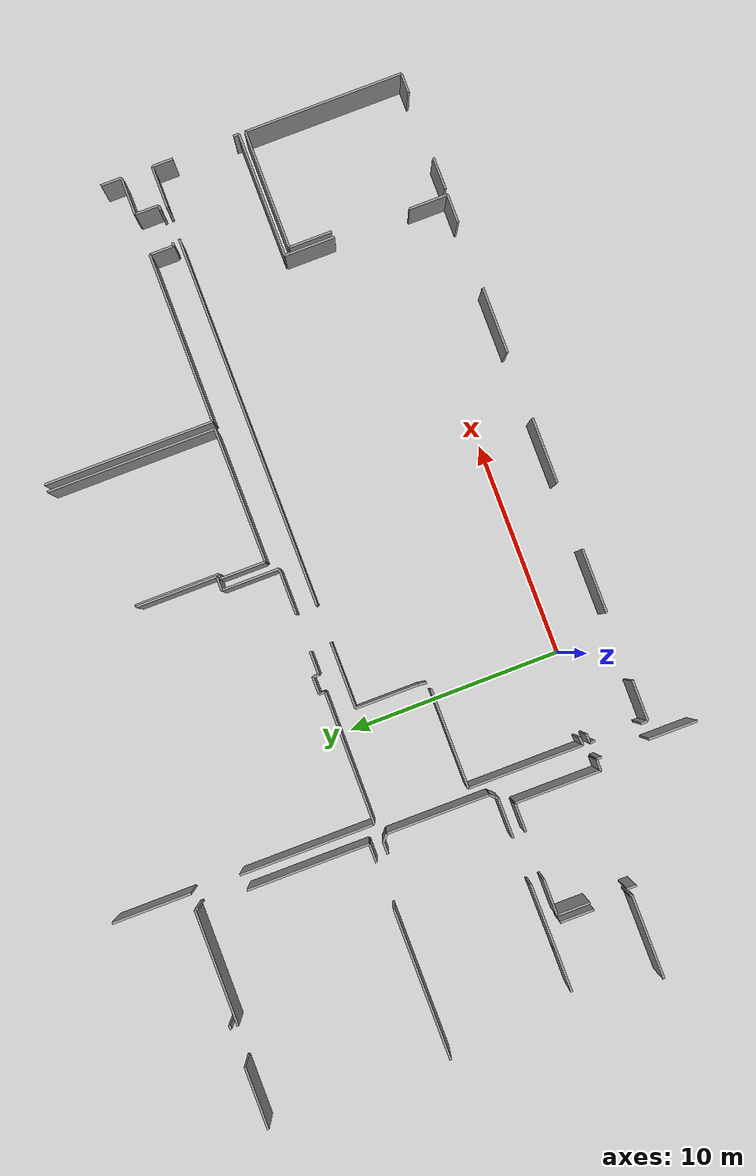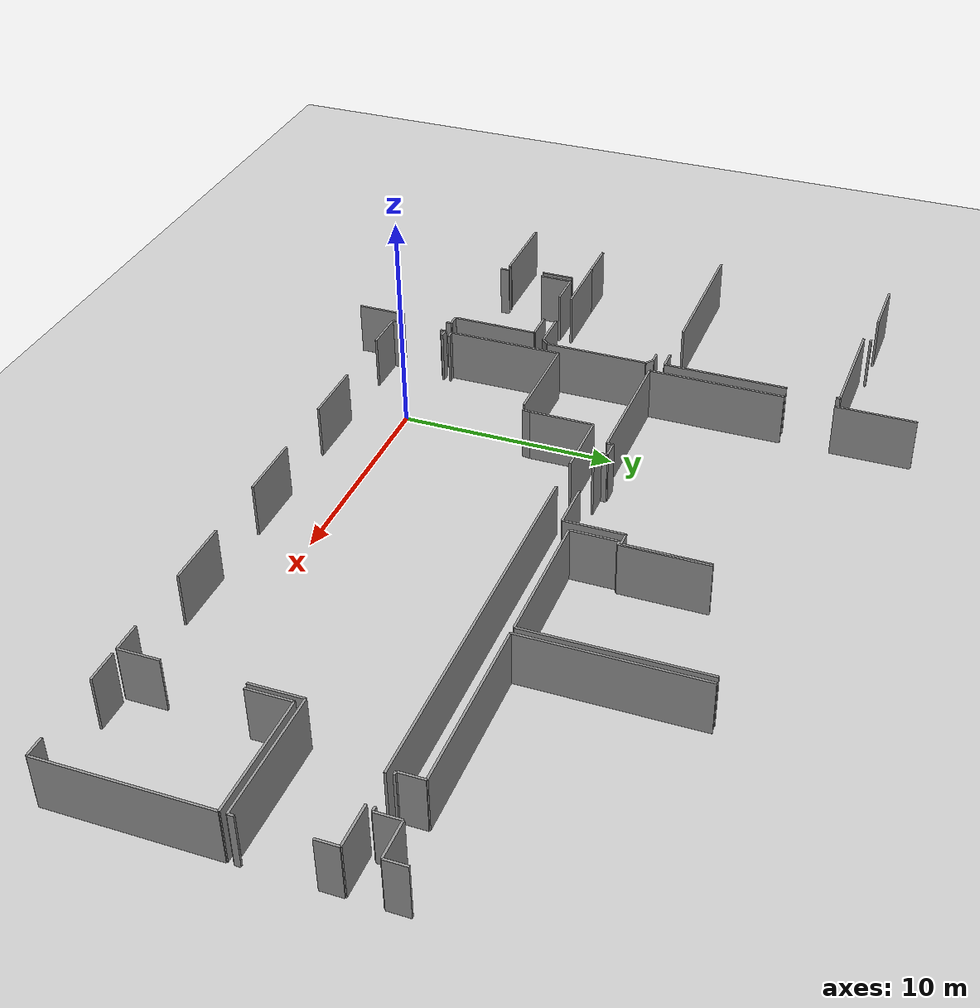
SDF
<sdf version="1.6">
 <world name="default">
  <model name="ground_plane">
   <static>1</static>
   <link name="link">
    <collision name="collision">
     <geometry><plane><normal>0 0 1</normal><size>100 100</size></plane></geometry>
     <surface><friction><ode><mu>100</mu><mu2>50</mu2></ode></friction></surface>
    </collision>
    <visual name="visual">
     <cast_shadows>0</cast_shadows>
     <geometry><plane><normal>0 0 1</normal><size>100 100</size></plane></geometry>
     <material>
      <script><uri>file://media/materials/scripts/gazebo.material</uri><name>Gazebo/Grey</name></script>
     </material>
    </visual>
   </link>
  </model>
  <model name="0510045922_A-40">
   <static>1</static>
   <link name="Wall_1239">
    <collision name="Wall_1239_Collision">
     <geometry><box><size>0.206138399949 0.1 2.5</size></box></geometry>
     <pose>0.103069199975 0 1.25 0 0 0</pose>
    </collision>
    <visual name="Wall_1239_Visual">
     <pose>0.103069199975 0 1.25 0 0 0</pose>
     <geometry><box><size>0.206138399949 0.1 2.5</size></box></geometry>
     <material>
      <script><uri>file://media/materials/scripts/gazebo.material</uri><name>Gazebo/Grey</name></script>
      <ambient>1 1 1 1</ambient>
     </material>
    </visual>
    <pose>124.140611298 -81.8037491263 0 0 0 3.14159265359</pose>
   </link>
   <link name="Wall_1240">
    <collision name="Wall_1240_Collision">
     <geometry><box><size>2.88899177243 0.1 2.5</size></box></geometry>
     <pose>1.44449588622 0 1.25 0 0 0</pose>
    </collision>
    <visual name="Wall_1240_Visual">
     <pose>1.44449588622 0 1.25 0 0 0</pose>
     <geometry><box><size>2.88899177243 0.1 2.5</size></box></geometry>
     <material>
      <script><uri>file://media/materials/scripts/gazebo.material</uri><name>Gazebo/Grey</name></script>
      <ambient>1 1 1 1</ambient>
     </material>
    </visual>
    <pose>122.211654064 -81.8037491263 0 0 0 -3.13992100285</pose>
   </link>
   <link name="Wall_1252">
    <collision name="Wall_1252_Collision">
     <geometry><box><size>5.37205312321 0.1 2.5</size></box></geometry>
     <pose>2.68602656161 0 1.25 0 0 0</pose>
    </collision>
    <visual name="Wall_1252_Visual">
     <pose>2.68602656161 0 1.25 0 0 0</pose>
     <geometry><box><size>5.37205312321 0.1 2.5</size></box></geometry>
     <material>
      <script><uri>file://media/materials/scripts/gazebo.material</uri><name>Gazebo/Grey</name></script>
      <ambient>1 1 1 1</ambient>
     </material>
    </visual>
    <pose>123.974124674 -82.1435851814 0 0 0 0.0</pose>
   </link>
   <link name="Wall_1253">
    <collision name="Wall_1253_Collision">
     <geometry><box><size>0.174620321535 0.1 2.5</size></box></geometry>
     <pose>0.0873101607676 0 1.25 0 0 0</pose>
    </collision>
    <visual name="Wall_1253_Visual">
     <pose>0.0873101607676 0 1.25 0 0 0</pose>
     <geometry><box><size>0.174620321535 0.1 2.5</size></box></geometry>
     <material>
      <script><uri>file://media/materials/scripts/gazebo.material</uri><name>Gazebo/Grey</name></script>
      <ambient>1 1 1 1</ambient>
     </material>
    </visual>
    <pose>129.346177798 -82.1435851814 0 0 0 -1.57079632679</pose>
   </link>
   <link name="Wall_1254">
    <collision name="Wall_1254_Collision">
     <geometry><box><size>5.71671856135 0.1 2.5</size></box></geometry>
     <pose>2.85835928068 0 1.25 0 0 0</pose>
    </collision>
    <visual name="Wall_1254_Visual">
     <pose>2.85835928068 0 1.25 0 0 0</pose>
     <geometry><box><size>5.71671856135 0.1 2.5</size></box></geometry>
     <material>
      <script><uri>file://media/materials/scripts/gazebo.material</uri><name>Gazebo/Grey</name></script>
      <ambient>1 1 1 1</ambient>
     </material>
    </visual>
    <pose>129.346177798 -84.569206329 0 0 0 -1.57079632679</pose>
   </link>
   <link name="Wall_1255">
    <collision name="Wall_1255_Collision">
     <geometry><box><size>0.868526402745 0.1 2.5</size></box></geometry>
     <pose>0.434263201373 0 1.25 0 0 0</pose>
    </collision>
    <visual name="Wall_1255_Visual">
     <pose>0.434263201373 0 1.25 0 0 0</pose>
     <geometry><box><size>0.868526402745 0.1 2.5</size></box></geometry>
     <material>
      <script><uri>file://media/materials/scripts/gazebo.material</uri><name>Gazebo/Grey</name></script>
      <ambient>1 1 1 1</ambient>
     </material>
    </visual>
    <pose>129.346177798 -90.2859248904 0 0 0 3.14159265359</pose>
   </link>
   <link name="Wall_1256">
    <collision name="Wall_1256_Collision">
     <geometry><box><size>6.96397695934 0.1 2.5</size></box></geometry>
     <pose>3.48198847967 0 1.25 0 0 0</pose>
    </collision>
    <visual name="Wall_1256_Visual">
     <pose>3.48198847967 0 1.25 0 0 0</pose>
     <geometry><box><size>6.96397695934 0.1 2.5</size></box></geometry>
     <material>
      <script><uri>file://media/materials/scripts/gazebo.material</uri><name>Gazebo/Grey</name></script>
      <ambient>1 1 1 1</ambient>
     </material>
    </visual>
    <pose>126.301378916 -90.2859248904 0 0 0 -3.14020569193</pose>
   </link>
   <link name="Wall_1261">
    <collision name="Wall_1261_Collision">
     <geometry><box><size>0.967147486815 0.1 2.5</size></box></geometry>
     <pose>0.483573743407 0 1.25 0 0 0</pose>
    </collision>
    <visual name="Wall_1261_Visual">
     <pose>0.483573743407 0 1.25 0 0 0</pose>
     <geometry><box><size>0.967147486815 0.1 2.5</size></box></geometry>
     <material>
      <script><uri>file://media/materials/scripts/gazebo.material</uri><name>Gazebo/Grey</name></script>
      <ambient>1 1 1 1</ambient>
     </material>
    </visual>
    <pose>160.664726441 -89.394522463 0 0 0 -1.57079632679</pose>
   </link>
   <link name="Wall_1262">
    <collision name="Wall_1262_Collision">
     <geometry><box><size>1.73095253225 0.1 2.5</size></box></geometry>
     <pose>0.865476266124 0 1.25 0 0 0</pose>
    </collision>
    <visual name="Wall_1262_Visual">
     <pose>0.865476266124 0 1.25 0 0 0</pose>
     <geometry><box><size>1.73095253225 0.1 2.5</size></box></geometry>
     <material>
      <script><uri>file://media/materials/scripts/gazebo.material</uri><name>Gazebo/Grey</name></script>
      <ambient>1 1 1 1</ambient>
     </material>
    </visual>
    <pose>160.664726441 -90.3616699498 0 0 0 3.14159265359</pose>
   </link>
   <link name="Wall_1263">
    <collision name="Wall_1263_Collision">
     <geometry><box><size>1.1130456885 0.1 2.5</size></box></geometry>
     <pose>0.556522844252 0 1.25 0 0 0</pose>
    </collision>
    <visual name="Wall_1263_Visual">
     <pose>0.556522844252 0 1.25 0 0 0</pose>
     <geometry><box><size>1.1130456885 0.1 2.5</size></box></geometry>
     <material>
      <script><uri>file://media/materials/scripts/gazebo.material</uri><name>Gazebo/Grey</name></script>
      <ambient>1 1 1 1</ambient>
     </material>
    </visual>
    <pose>158.933773909 -90.3616699498 0 0 0 -1.57079632679</pose>
   </link>
   <link name="Wall_1264">
    <collision name="Wall_1264_Collision">
     <geometry><box><size>0.236131410053 0.1 2.5</size></box></geometry>
     <pose>0.118065705026 0 1.25 0 0 0</pose>
    </collision>
    <visual name="Wall_1264_Visual">
     <pose>0.118065705026 0 1.25 0 0 0</pose>
     <geometry><box><size>0.236131410053 0.1 2.5</size></box></geometry>
     <material>
      <script><uri>file://media/materials/scripts/gazebo.material</uri><name>Gazebo/Grey</name></script>
      <ambient>1 1 1 1</ambient>
     </material>
    </visual>
    <pose>158.933773909 -91.4747156383 0 0 0 3.14159265359</pose>
   </link>
   <link name="Wall_1265">
    <collision name="Wall_1265_Collision">
     <geometry><box><size>0.171061828811 0.1 2.5</size></box></geometry>
     <pose>0.0855309144055 0 1.25 0 0 0</pose>
    </collision>
    <visual name="Wall_1265_Visual">
     <pose>0.0855309144055 0 1.25 0 0 0</pose>
     <geometry><box><size>0.171061828811 0.1 2.5</size></box></geometry>
     <material>
      <script><uri>file://media/materials/scripts/gazebo.material</uri><name>Gazebo/Grey</name></script>
      <ambient>1 1 1 1</ambient>
     </material>
    </visual>
    <pose>157.186299803 -91.4747156383 0 0 0 3.14159265359</pose>
   </link>
   <link name="Wall_1266">
    <collision name="Wall_1266_Collision">
     <geometry><box><size>1.12372116668 0.1 2.5</size></box></geometry>
     <pose>0.561860583339 0 1.25 0 0 0</pose>
    </collision>
    <visual name="Wall_1266_Visual">
     <pose>0.561860583339 0 1.25 0 0 0</pose>
     <geometry><box><size>1.12372116668 0.1 2.5</size></box></geometry>
     <material>
      <script><uri>file://media/materials/scripts/gazebo.material</uri><name>Gazebo/Grey</name></script>
      <ambient>1 1 1 1</ambient>
     </material>
    </visual>
    <pose>157.015237974 -91.4747156383 0 0 0 1.57079632679</pose>
   </link>
   <link name="Wall_1267">
    <collision name="Wall_1267_Collision">
     <geometry><box><size>7.90061638178 0.1 2.5</size></box></geometry>
     <pose>3.95030819089 0 1.25 0 0 0</pose>
    </collision>
    <visual name="Wall_1267_Visual">
     <pose>3.95030819089 0 1.25 0 0 0</pose>
     <geometry><box><size>7.90061638178 0.1 2.5</size></box></geometry>
     <material>
      <script><uri>file://media/materials/scripts/gazebo.material</uri><name>Gazebo/Grey</name></script>
      <ambient>1 1 1 1</ambient>
     </material>
    </visual>
    <pose>157.015237974 -90.3509944716 0 0 0 3.14159265359</pose>
   </link>
   <link name="Wall_1268">
    <collision name="Wall_1268_Collision">
     <geometry><box><size>7.90061638178 0.1 2.5</size></box></geometry>
     <pose>3.95030819089 0 1.25 0 0 0</pose>
    </collision>
    <visual name="Wall_1268_Visual">
     <pose>3.95030819089 0 1.25 0 0 0</pose>
     <geometry><box><size>7.90061638178 0.1 2.5</size></box></geometry>
     <material>
      <script><uri>file://media/materials/scripts/gazebo.material</uri><name>Gazebo/Grey</name></script>
      <ambient>1 1 1 1</ambient>
     </material>
    </visual>
    <pose>149.114621592 -90.3509944716 0 0 0 1.57079632679</pose>
   </link>
   <link name="Wall_1270">
    <collision name="Wall_1270_Collision">
     <geometry><box><size>2.11730317087 0.1 2.5</size></box></geometry>
     <pose>1.05865158544 0 1.25 0 0 0</pose>
    </collision>
    <visual name="Wall_1270_Visual">
     <pose>1.05865158544 0 1.25 0 0 0</pose>
     <geometry><box><size>2.11730317087 0.1 2.5</size></box></geometry>
     <material>
      <script><uri>file://media/materials/scripts/gazebo.material</uri><name>Gazebo/Grey</name></script>
      <ambient>1 1 1 1</ambient>
     </material>
    </visual>
    <pose>142.511584165 -90.3542987863 0 0 0 1.57079632679</pose>
   </link>
   <link name="Wall_1271">
    <collision name="Wall_1271_Collision">
     <geometry><box><size>0.213763741501 0.1 2.5</size></box></geometry>
     <pose>0.10688187075 0 1.25 0 0 0</pose>
    </collision>
    <visual name="Wall_1271_Visual">
     <pose>0.10688187075 0 1.25 0 0 0</pose>
     <geometry><box><size>0.213763741501 0.1 2.5</size></box></geometry>
     <material>
      <script><uri>file://media/materials/scripts/gazebo.material</uri><name>Gazebo/Grey</name></script>
      <ambient>1 1 1 1</ambient>
     </material>
    </visual>
    <pose>142.511584165 -88.2369956154 0 0 0 0.0</pose>
   </link>
   <link name="Wall_1272">
    <collision name="Wall_1272_Collision">
     <geometry><box><size>3.90925843553 0.1 2.5</size></box></geometry>
     <pose>1.95462921777 0 1.25 0 0 0</pose>
    </collision>
    <visual name="Wall_1272_Visual">
     <pose>1.95462921777 0 1.25 0 0 0</pose>
     <geometry><box><size>3.90925843553 0.1 2.5</size></box></geometry>
     <material>
      <script><uri>file://media/materials/scripts/gazebo.material</uri><name>Gazebo/Grey</name></script>
      <ambient>1 1 1 1</ambient>
     </material>
    </visual>
    <pose>142.725347906 -88.2369956154 0 0 0 1.57079632679</pose>
   </link>
   <link name="Wall_1276">
    <collision name="Wall_1276_Collision">
     <geometry><box><size>7.867319057 0.1 2.5</size></box></geometry>
     <pose>3.9336595285 0 1.25 0 0 0</pose>
    </collision>
    <visual name="Wall_1276_Visual">
     <pose>3.9336595285 0 1.25 0 0 0</pose>
     <geometry><box><size>7.867319057 0.1 2.5</size></box></geometry>
     <material>
      <script><uri>file://media/materials/scripts/gazebo.material</uri><name>Gazebo/Grey</name></script>
      <ambient>1 1 1 1</ambient>
     </material>
    </visual>
    <pose>148.775039715 -82.4641037046 0 0 0 -1.57079632679</pose>
   </link>
   <link name="Wall_1277">
    <collision name="Wall_1277_Collision">
     <geometry><box><size>6.26349732554 0.1 2.5</size></box></geometry>
     <pose>3.13174866277 0 1.25 0 0 0</pose>
    </collision>
    <visual name="Wall_1277_Visual">
     <pose>3.13174866277 0 1.25 0 0 0</pose>
     <geometry><box><size>6.26349732554 0.1 2.5</size></box></geometry>
     <material>
      <script><uri>file://media/materials/scripts/gazebo.material</uri><name>Gazebo/Grey</name></script>
      <ambient>1 1 1 1</ambient>
     </material>
    </visual>
    <pose>148.775039715 -90.3314227616 0 0 0 -3.13794036888</pose>
   </link>
   <link name="Wall_1278">
    <collision name="Wall_1278_Collision">
     <geometry><box><size>6.27489356294 0.1 2.5</size></box></geometry>
     <pose>3.13744678147 0 1.25 0 0 0</pose>
    </collision>
    <visual name="Wall_1278_Visual">
     <pose>3.13744678147 0 1.25 0 0 0</pose>
     <geometry><box><size>6.27489356294 0.1 2.5</size></box></geometry>
     <material>
      <script><uri>file://media/materials/scripts/gazebo.material</uri><name>Gazebo/Grey</name></script>
      <ambient>1 1 1 1</ambient>
     </material>
    </visual>
    <pose>130.076177162 -90.7866556523 0 0 0 1.57079632679</pose>
   </link>
   <link name="Wall_1279">
    <collision name="Wall_1279_Collision">
     <geometry><box><size>3.67693969626 0.1 2.5</size></box></geometry>
     <pose>1.83846984813 0 1.25 0 0 0</pose>
    </collision>
    <visual name="Wall_1279_Visual">
     <pose>1.83846984813 0 1.25 0 0 0</pose>
     <geometry><box><size>3.67693969626 0.1 2.5</size></box></geometry>
     <material>
      <script><uri>file://media/materials/scripts/gazebo.material</uri><name>Gazebo/Grey</name></script>
      <ambient>1 1 1 1</ambient>
     </material>
    </visual>
    <pose>130.076177162 -82.2419520874 0 0 0 1.57079632679</pose>
   </link>
   <link name="Wall_1283">
    <collision name="Wall_1283_Collision">
     <geometry><box><size>3.76971468514 0.1 2.5</size></box></geometry>
     <pose>1.88485734257 0 1.25 0 0 0</pose>
    </collision>
    <visual name="Wall_1283_Visual">
     <pose>1.88485734257 0 1.25 0 0 0</pose>
     <geometry><box><size>3.76971468514 0.1 2.5</size></box></geometry>
     <material>
      <script><uri>file://media/materials/scripts/gazebo.material</uri><name>Gazebo/Grey</name></script>
      <ambient>1 1 1 1</ambient>
     </material>
    </visual>
    <pose>142.655448942 -84.3556967656 0 0 0 -1.57079632679</pose>
   </link>
   <link name="Wall_1284">
    <collision name="Wall_1284_Collision">
     <geometry><box><size>0.642053758658 0.1 2.5</size></box></geometry>
     <pose>0.321026879329 0 1.25 0 0 0</pose>
    </collision>
    <visual name="Wall_1284_Visual">
     <pose>0.321026879329 0 1.25 0 0 0</pose>
     <geometry><box><size>0.642053758658 0.1 2.5</size></box></geometry>
     <material>
      <script><uri>file://media/materials/scripts/gazebo.material</uri><name>Gazebo/Grey</name></script>
      <ambient>1 1 1 1</ambient>
     </material>
    </visual>
    <pose>142.655448942 -88.1254114507 0 0 0 3.14159265359</pose>
   </link>
   <link name="Wall_1285">
    <collision name="Wall_1285_Collision">
     <geometry><box><size>2.68971214336 0.1 2.5</size></box></geometry>
     <pose>1.34485607168 0 1.25 0 0 0</pose>
    </collision>
    <visual name="Wall_1285_Visual">
     <pose>1.34485607168 0 1.25 0 0 0</pose>
     <geometry><box><size>2.68971214336 0.1 2.5</size></box></geometry>
     <material>
      <script><uri>file://media/materials/scripts/gazebo.material</uri><name>Gazebo/Grey</name></script>
      <ambient>1 1 1 1</ambient>
     </material>
    </visual>
    <pose>142.013395183 -88.1254114507 0 0 0 -1.57079632679</pose>
   </link>
   <link name="Wall_1286">
    <collision name="Wall_1286_Collision">
     <geometry><box><size>2.11831988308 0.1 2.5</size></box></geometry>
     <pose>1.05915994154 0 1.25 0 0 0</pose>
    </collision>
    <visual name="Wall_1286_Visual">
     <pose>1.05915994154 0 1.25 0 0 0</pose>
     <geometry><box><size>2.11831988308 0.1 2.5</size></box></geometry>
     <material>
      <script><uri>file://media/materials/scripts/gazebo.material</uri><name>Gazebo/Grey</name></script>
      <ambient>1 1 1 1</ambient>
     </material>
    </visual>
    <pose>142.013395183 -90.8151235941 0 0 0 3.14159265359</pose>
   </link>
   <link name="Wall_1287">
    <collision name="Wall_1287_Collision">
     <geometry><box><size>1.08940712969 0.1 2.5</size></box></geometry>
     <pose>0.544703564847 0 1.25 0 0 0</pose>
    </collision>
    <visual name="Wall_1287_Visual">
     <pose>0.544703564847 0 1.25 0 0 0</pose>
     <geometry><box><size>1.08940712969 0.1 2.5</size></box></geometry>
     <material>
      <script><uri>file://media/materials/scripts/gazebo.material</uri><name>Gazebo/Grey</name></script>
      <ambient>1 1 1 1</ambient>
     </material>
    </visual>
    <pose>138.128792019 -90.8151235941 0 0 0 3.14159265359</pose>
   </link>
   <link name="Wall_1288">
    <collision name="Wall_1288_Collision">
     <geometry><box><size>0.285696130139 0.1 2.5</size></box></geometry>
     <pose>0.14284806507 0 1.25 0 0 0</pose>
    </collision>
    <visual name="Wall_1288_Visual">
     <pose>0.14284806507 0 1.25 0 0 0</pose>
     <geometry><box><size>0.285696130139 0.1 2.5</size></box></geometry>
     <material>
      <script><uri>file://media/materials/scripts/gazebo.material</uri><name>Gazebo/Grey</name></script>
      <ambient>1 1 1 1</ambient>
     </material>
    </visual>
    <pose>137.039384889 -90.8151235941 0 0 0 1.57079632679</pose>
   </link>
   <link name="Wall_1289">
    <collision name="Wall_1289_Collision">
     <geometry><box><size>0.802694287348 0.1 2.5</size></box></geometry>
     <pose>0.401347143674 0 1.25 0 0 0</pose>
    </collision>
    <visual name="Wall_1289_Visual">
     <pose>0.401347143674 0 1.25 0 0 0</pose>
     <geometry><box><size>0.802694287348 0.1 2.5</size></box></geometry>
     <material>
      <script><uri>file://media/materials/scripts/gazebo.material</uri><name>Gazebo/Grey</name></script>
      <ambient>1 1 1 1</ambient>
     </material>
    </visual>
    <pose>137.039384889 -90.5294274639 0 0 0 3.14159265359</pose>
   </link>
   <link name="Wall_1290">
    <collision name="Wall_1290_Collision">
     <geometry><box><size>0.277054076381 0.1 2.5</size></box></geometry>
     <pose>0.13852703819 0 1.25 0 0 0</pose>
    </collision>
    <visual name="Wall_1290_Visual">
     <pose>0.13852703819 0 1.25 0 0 0</pose>
     <geometry><box><size>0.277054076381 0.1 2.5</size></box></geometry>
     <material>
      <script><uri>file://media/materials/scripts/gazebo.material</uri><name>Gazebo/Grey</name></script>
      <ambient>1 1 1 1</ambient>
     </material>
    </visual>
    <pose>136.236690602 -90.5294274639 0 0 0 -1.57079632679</pose>
   </link>
   <link name="Wall_1291">
    <collision name="Wall_1291_Collision">
     <geometry><box><size>6.16054534162 0.1 2.5</size></box></geometry>
     <pose>3.08027267081 0 1.25 0 0 0</pose>
    </collision>
    <visual name="Wall_1291_Visual">
     <pose>3.08027267081 0 1.25 0 0 0</pose>
     <geometry><box><size>6.16054534162 0.1 2.5</size></box></geometry>
     <material>
      <script><uri>file://media/materials/scripts/gazebo.material</uri><name>Gazebo/Grey</name></script>
      <ambient>1 1 1 1</ambient>
     </material>
    </visual>
    <pose>136.236690602 -90.8064815403 0 0 0 3.13837444462</pose>
   </link>
   <link name="Wall_1292">
    <collision name="Wall_1292_Collision">
     <geometry><box><size>5.37357819152 0.1 2.5</size></box></geometry>
     <pose>2.68678909576 0 1.25 0 0 0</pose>
    </collision>
    <visual name="Wall_1292_Visual">
     <pose>2.68678909576 0 1.25 0 0 0</pose>
     <geometry><box><size>5.37357819152 0.1 2.5</size></box></geometry>
     <material>
      <script><uri>file://media/materials/scripts/gazebo.material</uri><name>Gazebo/Grey</name></script>
      <ambient>1 1 1 1</ambient>
     </material>
    </visual>
    <pose>130.090411133 -100.56386859 0 0 0 1.57079632679</pose>
   </link>
   <link name="Wall_1293">
    <collision name="Wall_1293_Collision">
     <geometry><box><size>4.60951896804 0.1 2.5</size></box></geometry>
     <pose>2.30475948402 0 1.25 0 0 0</pose>
    </collision>
    <visual name="Wall_1293_Visual">
     <pose>2.30475948402 0 1.25 0 0 0</pose>
     <geometry><box><size>4.60951896804 0.1 2.5</size></box></geometry>
     <material>
      <script><uri>file://media/materials/scripts/gazebo.material</uri><name>Gazebo/Grey</name></script>
      <ambient>1 1 1 1</ambient>
     </material>
    </visual>
    <pose>130.090411133 -95.1902903984 0 0 0 0.0</pose>
   </link>
   <link name="Wall_1294">
    <collision name="Wall_1294_Collision">
     <geometry><box><size>0.37125739065 0.1 2.5</size></box></geometry>
     <pose>0.185628695325 0 1.25 0 0 0</pose>
    </collision>
    <visual name="Wall_1294_Visual">
     <pose>0.185628695325 0 1.25 0 0 0</pose>
     <geometry><box><size>0.37125739065 0.1 2.5</size></box></geometry>
     <material>
      <script><uri>file://media/materials/scripts/gazebo.material</uri><name>Gazebo/Grey</name></script>
      <ambient>1 1 1 1</ambient>
     </material>
    </visual>
    <pose>130.460240198 -100.531333799 0 0 0 -3.05384604148</pose>
   </link>
   <link name="Wall_1296">
    <collision name="Wall_1296_Collision">
     <geometry><box><size>1.99961873292 0.1 2.5</size></box></geometry>
     <pose>0.999809366461 0 1.25 0 0 0</pose>
    </collision>
    <visual name="Wall_1296_Visual">
     <pose>0.999809366461 0 1.25 0 0 0</pose>
     <geometry><box><size>1.99961873292 0.1 2.5</size></box></geometry>
     <material>
      <script><uri>file://media/materials/scripts/gazebo.material</uri><name>Gazebo/Grey</name></script>
      <ambient>1 1 1 1</ambient>
     </material>
    </visual>
    <pose>155.149825253 -98.2170426384 0 0 0 1.57079632679</pose>
   </link>
   <link name="Wall_1297">
    <collision name="Wall_1297_Collision">
     <geometry><box><size>5.5105801614 0.1 2.5</size></box></geometry>
     <pose>2.7552900807 0 1.25 0 0 0</pose>
    </collision>
    <visual name="Wall_1297_Visual">
     <pose>2.7552900807 0 1.25 0 0 0</pose>
     <geometry><box><size>5.5105801614 0.1 2.5</size></box></geometry>
     <material>
      <script><uri>file://media/materials/scripts/gazebo.material</uri><name>Gazebo/Grey</name></script>
      <ambient>1 1 1 1</ambient>
     </material>
    </visual>
    <pose>155.149825253 -96.2174239054 0 0 0 0.0</pose>
   </link>
   <link name="Wall_1298">
    <collision name="Wall_1298_Collision">
     <geometry><box><size>7.37777212938 0.1 2.5</size></box></geometry>
     <pose>3.68888606469 0 1.25 0 0 0</pose>
    </collision>
    <visual name="Wall_1298_Visual">
     <pose>3.68888606469 0 1.25 0 0 0</pose>
     <geometry><box><size>7.37777212938 0.1 2.5</size></box></geometry>
     <material>
      <script><uri>file://media/materials/scripts/gazebo.material</uri><name>Gazebo/Grey</name></script>
      <ambient>1 1 1 1</ambient>
     </material>
    </visual>
    <pose>160.660405414 -96.2174239054 0 0 0 -1.57079632679</pose>
   </link>
   <link name="Wall_1299">
    <collision name="Wall_1299_Collision">
     <geometry><box><size>0.9135159179 0.1 2.5</size></box></geometry>
     <pose>0.45675795895 0 1.25 0 0 0</pose>
    </collision>
    <visual name="Wall_1299_Visual">
     <pose>0.45675795895 0 1.25 0 0 0</pose>
     <geometry><box><size>0.9135159179 0.1 2.5</size></box></geometry>
     <material>
      <script><uri>file://media/materials/scripts/gazebo.material</uri><name>Gazebo/Grey</name></script>
      <ambient>1 1 1 1</ambient>
     </material>
    </visual>
    <pose>160.660405414 -103.595196035 0 0 0 3.14159265359</pose>
   </link>
   <link name="Wall_1300">
    <collision name="Wall_1300_Collision">
     <geometry><box><size>1.48542523303 0.1 2.5</size></box></geometry>
     <pose>0.742712616513 0 1.25 0 0 0</pose>
    </collision>
    <visual name="Wall_1300_Visual">
     <pose>0.742712616513 0 1.25 0 0 0</pose>
     <geometry><box><size>1.48542523303 0.1 2.5</size></box></geometry>
     <material>
      <script><uri>file://media/materials/scripts/gazebo.material</uri><name>Gazebo/Grey</name></script>
      <ambient>1 1 1 1</ambient>
     </material>
    </visual>
    <pose>156.635241787 -103.595196035 0 0 0 -3.13817035347</pose>
   </link>
   <link name="Wall_1301">
    <collision name="Wall_1301_Collision">
     <geometry><box><size>2.94134841456 0.1 2.5</size></box></geometry>
     <pose>1.47067420728 0 1.25 0 0 0</pose>
    </collision>
    <visual name="Wall_1301_Visual">
     <pose>1.47067420728 0 1.25 0 0 0</pose>
     <geometry><box><size>2.94134841456 0.1 2.5</size></box></geometry>
     <material>
      <script><uri>file://media/materials/scripts/gazebo.material</uri><name>Gazebo/Grey</name></script>
      <ambient>1 1 1 1</ambient>
     </material>
    </visual>
    <pose>135.09543115 -94.7462413421 0 0 0 1.57079632679</pose>
   </link>
   <link name="Wall_1302">
    <collision name="Wall_1302_Collision">
     <geometry><box><size>3.09995551884 0.1 2.5</size></box></geometry>
     <pose>1.54997775942 0 1.25 0 0 0</pose>
    </collision>
    <visual name="Wall_1302_Visual">
     <pose>1.54997775942 0 1.25 0 0 0</pose>
     <geometry><box><size>3.09995551884 0.1 2.5</size></box></geometry>
     <material>
      <script><uri>file://media/materials/scripts/gazebo.material</uri><name>Gazebo/Grey</name></script>
      <ambient>1 1 1 1</ambient>
     </material>
    </visual>
    <pose>135.09543115 -91.8048929275 0 0 0 0.0</pose>
   </link>
   <link name="Wall_1303">
    <collision name="Wall_1303_Collision">
     <geometry><box><size>17.2858867637 0.1 2.5</size></box></geometry>
     <pose>8.64294338184 0 1.25 0 0 0</pose>
    </collision>
    <visual name="Wall_1303_Visual">
     <pose>8.64294338184 0 1.25 0 0 0</pose>
     <geometry><box><size>17.2858867637 0.1 2.5</size></box></geometry>
     <material>
      <script><uri>file://media/materials/scripts/gazebo.material</uri><name>Gazebo/Grey</name></script>
      <ambient>1 1 1 1</ambient>
     </material>
    </visual>
    <pose>139.925322488 -91.8048929275 0 0 0 0.0</pose>
   </link>
   <link name="Wall_1304">
    <collision name="Wall_1304_Collision">
     <geometry><box><size>1.94776641037 0.1 2.5</size></box></geometry>
     <pose>0.973883205185 0 1.25 0 0 0</pose>
    </collision>
    <visual name="Wall_1304_Visual">
     <pose>0.973883205185 0 1.25 0 0 0</pose>
     <geometry><box><size>1.94776641037 0.1 2.5</size></box></geometry>
     <material>
      <script><uri>file://media/materials/scripts/gazebo.material</uri><name>Gazebo/Grey</name></script>
      <ambient>1 1 1 1</ambient>
     </material>
    </visual>
    <pose>158.715180784 -91.8048929275 0 0 0 0.0</pose>
   </link>
   <link name="Wall_1305">
    <collision name="Wall_1305_Collision">
     <geometry><box><size>0.980873101608 0.1 2.5</size></box></geometry>
     <pose>0.490436550804 0 1.25 0 0 0</pose>
    </collision>
    <visual name="Wall_1305_Visual">
     <pose>0.490436550804 0 1.25 0 0 0</pose>
     <geometry><box><size>0.980873101608 0.1 2.5</size></box></geometry>
     <material>
      <script><uri>file://media/materials/scripts/gazebo.material</uri><name>Gazebo/Grey</name></script>
      <ambient>1 1 1 1</ambient>
     </material>
    </visual>
    <pose>160.662947195 -91.8048929275 0 0 0 -1.57079632679</pose>
   </link>
   <link name="Wall_1306">
    <collision name="Wall_1306_Collision">
     <geometry><box><size>0.257482366398 0.1 2.5</size></box></geometry>
     <pose>0.128741183199 0 1.25 0 0 0</pose>
    </collision>
    <visual name="Wall_1306_Visual">
     <pose>0.128741183199 0 1.25 0 0 0</pose>
     <geometry><box><size>0.257482366398 0.1 2.5</size></box></geometry>
     <material>
      <script><uri>file://media/materials/scripts/gazebo.material</uri><name>Gazebo/Grey</name></script>
      <ambient>1 1 1 1</ambient>
     </material>
    </visual>
    <pose>160.662947195 -95.6508610282 0 0 0 -1.57079632679</pose>
   </link>
   <link name="Wall_1307">
    <collision name="Wall_1307_Collision">
     <geometry><box><size>5.78026307428 0.1 2.5</size></box></geometry>
     <pose>2.89013153714 0 1.25 0 0 0</pose>
    </collision>
    <visual name="Wall_1307_Visual">
     <pose>2.89013153714 0 1.25 0 0 0</pose>
     <geometry><box><size>5.78026307428 0.1 2.5</size></box></geometry>
     <material>
      <script><uri>file://media/materials/scripts/gazebo.material</uri><name>Gazebo/Grey</name></script>
      <ambient>1 1 1 1</ambient>
     </material>
    </visual>
    <pose>160.662947195 -95.9083433945 0 0 0 3.14159265359</pose>
   </link>
   <link name="Wall_1308">
    <collision name="Wall_1308_Collision">
     <geometry><box><size>2.35140115651 0.1 2.5</size></box></geometry>
     <pose>1.17570057826 0 1.25 0 0 0</pose>
    </collision>
    <visual name="Wall_1308_Visual">
     <pose>1.17570057826 0 1.25 0 0 0</pose>
     <geometry><box><size>2.35140115651 0.1 2.5</size></box></geometry>
     <material>
      <script><uri>file://media/materials/scripts/gazebo.material</uri><name>Gazebo/Grey</name></script>
      <ambient>1 1 1 1</ambient>
     </material>
    </visual>
    <pose>154.88268412 -95.9083433945 0 0 0 -1.57079632679</pose>
   </link>
   <link name="Wall_1309">
    <collision name="Wall_1309_Collision">
     <geometry><box><size>1.80949355023 0.1 2.5</size></box></geometry>
     <pose>0.904746775116 0 1.25 0 0 0</pose>
    </collision>
    <visual name="Wall_1309_Visual">
     <pose>0.904746775116 0 1.25 0 0 0</pose>
     <geometry><box><size>1.80949355023 0.1 2.5</size></box></geometry>
     <material>
      <script><uri>file://media/materials/scripts/gazebo.material</uri><name>Gazebo/Grey</name></script>
      <ambient>1 1 1 1</ambient>
     </material>
    </visual>
    <pose>154.88268412 -101.782906526 0 0 0 -1.57079632679</pose>
   </link>
   <link name="Wall_1310">
    <collision name="Wall_1310_Collision">
     <geometry><box><size>1.33189299104 0.1 2.5</size></box></geometry>
     <pose>0.66594649552 0 1.25 0 0 0</pose>
    </collision>
    <visual name="Wall_1310_Visual">
     <pose>0.66594649552 0 1.25 0 0 0</pose>
     <geometry><box><size>1.33189299104 0.1 2.5</size></box></geometry>
     <material>
      <script><uri>file://media/materials/scripts/gazebo.material</uri><name>Gazebo/Grey</name></script>
      <ambient>1 1 1 1</ambient>
     </material>
    </visual>
    <pose>154.88268412 -103.592400076 0 0 0 3.14159265359</pose>
   </link>
   <link name="Wall_1311">
    <collision name="Wall_1311_Collision">
     <geometry><box><size>3.05954120862 0.1 2.5</size></box></geometry>
     <pose>1.52977060431 0 1.25 0 0 0</pose>
    </collision>
    <visual name="Wall_1311_Visual">
     <pose>1.52977060431 0 1.25 0 0 0</pose>
     <geometry><box><size>3.05954120862 0.1 2.5</size></box></geometry>
     <material>
      <script><uri>file://media/materials/scripts/gazebo.material</uri><name>Gazebo/Grey</name></script>
      <ambient>1 1 1 1</ambient>
     </material>
    </visual>
    <pose>150.454648281 -103.592400076 0 0 0 3.14159265359</pose>
   </link>
   <link name="Wall_1312">
    <collision name="Wall_1312_Collision">
     <geometry><box><size>3.06182881108 0.1 2.5</size></box></geometry>
     <pose>1.53091440554 0 1.25 0 0 0</pose>
    </collision>
    <visual name="Wall_1312_Visual">
     <pose>1.53091440554 0 1.25 0 0 0</pose>
     <geometry><box><size>3.06182881108 0.1 2.5</size></box></geometry>
     <material>
      <script><uri>file://media/materials/scripts/gazebo.material</uri><name>Gazebo/Grey</name></script>
      <ambient>1 1 1 1</ambient>
     </material>
    </visual>
    <pose>144.291847239 -103.592400076 0 0 0 3.14159265359</pose>
   </link>
   <link name="Wall_1313">
    <collision name="Wall_1313_Collision">
     <geometry><box><size>3.00895977632 0.1 2.5</size></box></geometry>
     <pose>1.50447988816 0 1.25 0 0 0</pose>
    </collision>
    <visual name="Wall_1313_Visual">
     <pose>1.50447988816 0 1.25 0 0 0</pose>
     <geometry><box><size>3.00895977632 0.1 2.5</size></box></geometry>
     <material>
      <script><uri>file://media/materials/scripts/gazebo.material</uri><name>Gazebo/Grey</name></script>
      <ambient>1 1 1 1</ambient>
     </material>
    </visual>
    <pose>138.132096333 -103.592400076 0 0 0 3.14159265359</pose>
   </link>
   <link name="Wall_1314">
    <collision name="Wall_1314_Collision">
     <geometry><box><size>1.91014805872 0.1 2.5</size></box></geometry>
     <pose>0.955074029358 0 1.25 0 0 0</pose>
    </collision>
    <visual name="Wall_1314_Visual">
     <pose>0.955074029358 0 1.25 0 0 0</pose>
     <geometry><box><size>1.91014805872 0.1 2.5</size></box></geometry>
     <material>
      <script><uri>file://media/materials/scripts/gazebo.material</uri><name>Gazebo/Grey</name></script>
      <ambient>1 1 1 1</ambient>
     </material>
    </visual>
    <pose>131.975395565 -103.592400076 0 0 0 3.14159265359</pose>
   </link>
   <link name="Wall_1315">
    <collision name="Wall_1315_Collision">
     <geometry><box><size>0.326872974519 0.1 2.5</size></box></geometry>
     <pose>0.163436487259 0 1.25 0 0 0</pose>
    </collision>
    <visual name="Wall_1315_Visual">
     <pose>0.163436487259 0 1.25 0 0 0</pose>
     <geometry><box><size>0.326872974519 0.1 2.5</size></box></geometry>
     <material>
      <script><uri>file://media/materials/scripts/gazebo.material</uri><name>Gazebo/Grey</name></script>
      <ambient>1 1 1 1</ambient>
     </material>
    </visual>
    <pose>130.065247506 -103.592400076 0 0 0 1.57079632679</pose>
   </link>
   <link name="Wall_1316">
    <collision name="Wall_1316_Collision">
     <geometry><box><size>0.24019825888 0.1 2.5</size></box></geometry>
     <pose>0.12009912944 0 1.25 0 0 0</pose>
    </collision>
    <visual name="Wall_1316_Visual">
     <pose>0.12009912944 0 1.25 0 0 0</pose>
     <geometry><box><size>0.24019825888 0.1 2.5</size></box></geometry>
     <material>
      <script><uri>file://media/materials/scripts/gazebo.material</uri><name>Gazebo/Grey</name></script>
      <ambient>1 1 1 1</ambient>
     </material>
    </visual>
    <pose>130.065247506 -101.112384826 0 0 0 1.57079632679</pose>
   </link>
   <link name="Wall_1317">
    <collision name="Wall_1317_Collision">
     <geometry><box><size>0.415326936519 0.1 2.5</size></box></geometry>
     <pose>0.20766346826 0 1.25 0 0 0</pose>
    </collision>
    <visual name="Wall_1317_Visual">
     <pose>0.20766346826 0 1.25 0 0 0</pose>
     <geometry><box><size>0.415326936519 0.1 2.5</size></box></geometry>
     <material>
      <script><uri>file://media/materials/scripts/gazebo.material</uri><name>Gazebo/Grey</name></script>
      <ambient>1 1 1 1</ambient>
     </material>
    </visual>
    <pose>130.065247506 -100.872186567 0 0 0 0.0</pose>
   </link>
   <link name="Wall_1318">
    <collision name="Wall_1318_Collision">
     <geometry><box><size>0.370097994423 0.1 2.5</size></box></geometry>
     <pose>0.185048997211 0 1.25 0 0 0</pose>
    </collision>
    <visual name="Wall_1318_Visual">
     <pose>0.185048997211 0 1.25 0 0 0</pose>
     <geometry><box><size>0.370097994423 0.1 2.5</size></box></geometry>
     <material>
      <script><uri>file://media/materials/scripts/gazebo.material</uri><name>Gazebo/Grey</name></script>
      <ambient>1 1 1 1</ambient>
     </material>
    </visual>
    <pose>135.047899854 -95.1132744488 0 0 0 1.44201168237</pose>
   </link>
   <link name="Wall_1319">
    <collision name="Wall_1319_Collision">
     <geometry><box><size>1.85194128487 0.1 2.5</size></box></geometry>
     <pose>0.925970642435 0 1.25 0 0 0</pose>
    </collision>
    <visual name="Wall_1319_Visual">
     <pose>0.925970642435 0 1.25 0 0 0</pose>
     <geometry><box><size>1.85194128487 0.1 2.5</size></box></geometry>
     <material>
      <script><uri>file://media/materials/scripts/gazebo.material</uri><name>Gazebo/Grey</name></script>
      <ambient>1 1 1 1</ambient>
     </material>
    </visual>
    <pose>122.07770223 -96.2774099257 0 0 0 3.14159265359</pose>
   </link>
   <link name="Wall_1328">
    <collision name="Wall_1328_Collision">
     <geometry><box><size>0.551820550295 0.1 2.5</size></box></geometry>
     <pose>0.275910275148 0 1.25 0 0 0</pose>
    </collision>
    <visual name="Wall_1328_Visual">
     <pose>0.275910275148 0 1.25 0 0 0</pose>
     <geometry><box><size>0.551820550295 0.1 2.5</size></box></geometry>
     <material>
      <script><uri>file://media/materials/scripts/gazebo.material</uri><name>Gazebo/Grey</name></script>
      <ambient>1 1 1 1</ambient>
     </material>
    </visual>
    <pose>128.644900553 -90.8842600241 0 0 0 0.0</pose>
   </link>
   <link name="Wall_1329">
    <collision name="Wall_1329_Collision">
     <geometry><box><size>0.406871104978 0.1 2.5</size></box></geometry>
     <pose>0.203435552489 0 1.25 0 0 0</pose>
    </collision>
    <visual name="Wall_1329_Visual">
     <pose>0.203435552489 0 1.25 0 0 0</pose>
     <geometry><box><size>0.406871104978 0.1 2.5</size></box></geometry>
     <material>
      <script><uri>file://media/materials/scripts/gazebo.material</uri><name>Gazebo/Grey</name></script>
      <ambient>1 1 1 1</ambient>
     </material>
    </visual>
    <pose>129.196721103 -90.8842600241 0 0 0 -0.72041674018</pose>
   </link>
   <link name="Wall_1330">
    <collision name="Wall_1330_Collision">
     <geometry><box><size>4.79888161657 0.1 2.5</size></box></geometry>
     <pose>2.39944080829 0 1.25 0 0 0</pose>
    </collision>
    <visual name="Wall_1330_Visual">
     <pose>2.39944080829 0 1.25 0 0 0</pose>
     <geometry><box><size>4.79888161657 0.1 2.5</size></box></geometry>
     <material>
      <script><uri>file://media/materials/scripts/gazebo.material</uri><name>Gazebo/Grey</name></script>
      <ambient>1 1 1 1</ambient>
     </material>
    </visual>
    <pose>129.502497299 -91.1526720468 0 0 0 -1.57079632679</pose>
   </link>
   <link name="Wall_1331">
    <collision name="Wall_1331_Collision">
     <geometry><box><size>0.419271453946 0.1 2.5</size></box></geometry>
     <pose>0.209635726973 0 1.25 0 0 0</pose>
    </collision>
    <visual name="Wall_1331_Visual">
     <pose>0.209635726973 0 1.25 0 0 0</pose>
     <geometry><box><size>0.419271453946 0.1 2.5</size></box></geometry>
     <material>
      <script><uri>file://media/materials/scripts/gazebo.material</uri><name>Gazebo/Grey</name></script>
      <ambient>1 1 1 1</ambient>
     </material>
    </visual>
    <pose>129.502497299 -95.9515536633 0 0 0 -2.33047117731</pose>
   </link>
   <link name="Wall_1332">
    <collision name="Wall_1332_Collision">
     <geometry><box><size>1.84380758721 0.1 2.5</size></box></geometry>
     <pose>0.921903793607 0 1.25 0 0 0</pose>
    </collision>
    <visual name="Wall_1332_Visual">
     <pose>0.921903793607 0 1.25 0 0 0</pose>
     <geometry><box><size>1.84380758721 0.1 2.5</size></box></geometry>
     <material>
      <script><uri>file://media/materials/scripts/gazebo.material</uri><name>Gazebo/Grey</name></script>
      <ambient>1 1 1 1</ambient>
     </material>
    </visual>
    <pose>129.213751033 -96.2555506132 0 0 0 3.14159265359</pose>
   </link>
   <link name="Wall_1333">
    <collision name="Wall_1333_Collision">
     <geometry><box><size>3.12265387655 0.1 2.5</size></box></geometry>
     <pose>1.56132693827 0 1.25 0 0 0</pose>
    </collision>
    <visual name="Wall_1333_Visual">
     <pose>1.56132693827 0 1.25 0 0 0</pose>
     <geometry><box><size>3.12265387655 0.1 2.5</size></box></geometry>
     <material>
      <script><uri>file://media/materials/scripts/gazebo.material</uri><name>Gazebo/Grey</name></script>
      <ambient>1 1 1 1</ambient>
     </material>
    </visual>
    <pose>125.200279596 -96.2555506132 0 0 0 -3.13459236094</pose>
   </link>
   <link name="Wall_1336">
    <collision name="Wall_1336_Collision">
     <geometry><box><size>1.57361631823 0.1 2.5</size></box></geometry>
     <pose>0.786808159115 0 1.25 0 0 0</pose>
    </collision>
    <visual name="Wall_1336_Visual">
     <pose>0.786808159115 0 1.25 0 0 0</pose>
     <geometry><box><size>1.57361631823 0.1 2.5</size></box></geometry>
     <material>
      <script><uri>file://media/materials/scripts/gazebo.material</uri><name>Gazebo/Grey</name></script>
      <ambient>1 1 1 1</ambient>
     </material>
    </visual>
    <pose>123.219724217 -96.8729491008 0 0 0 -1.57079632679</pose>
   </link>
   <link name="Wall_1337">
    <collision name="Wall_1337_Collision">
     <geometry><box><size>0.101162864587 0.1 2.5</size></box></geometry>
     <pose>0.0505814322933 0 1.25 0 0 0</pose>
    </collision>
    <visual name="Wall_1337_Visual">
     <pose>0.0505814322933 0 1.25 0 0 0</pose>
     <geometry><box><size>0.101162864587 0.1 2.5</size></box></geometry>
     <material>
      <script><uri>file://media/materials/scripts/gazebo.material</uri><name>Gazebo/Grey</name></script>
      <ambient>1 1 1 1</ambient>
     </material>
    </visual>
    <pose>123.219724217 -100.128461587 0 0 0 -1.57079632679</pose>
   </link>
   <link name="Wall_1338">
    <collision name="Wall_1338_Collision">
     <geometry><box><size>3.8899669458 0.1 2.5</size></box></geometry>
     <pose>1.9449834729 0 1.25 0 0 0</pose>
    </collision>
    <visual name="Wall_1338_Visual">
     <pose>1.9449834729 0 1.25 0 0 0</pose>
     <geometry><box><size>3.8899669458 0.1 2.5</size></box></geometry>
     <material>
      <script><uri>file://media/materials/scripts/gazebo.material</uri><name>Gazebo/Grey</name></script>
      <ambient>1 1 1 1</ambient>
     </material>
    </visual>
    <pose>123.219724217 -100.229624452 0 0 0 -3.13793349585</pose>
   </link>
   <link name="Wall_1386">
    <collision name="Wall_1386_Collision">
     <geometry><box><size>0.447607549088 0.1 2.5</size></box></geometry>
     <pose>0.223803774544 0 1.25 0 0 0</pose>
    </collision>
    <visual name="Wall_1386_Visual">
     <pose>0.223803774544 0 1.25 0 0 0</pose>
     <geometry><box><size>0.447607549088 0.1 2.5</size></box></geometry>
     <material>
      <script><uri>file://media/materials/scripts/gazebo.material</uri><name>Gazebo/Grey</name></script>
      <ambient>1 1 1 1</ambient>
     </material>
    </visual>
    <pose>123.552951643 -100.554972358 0 0 0 1.57079632679</pose>
   </link>
   <link name="Wall_1387">
    <collision name="Wall_1387_Collision">
     <geometry><box><size>1.53396454216 0.1 2.5</size></box></geometry>
     <pose>0.766982271081 0 1.25 0 0 0</pose>
    </collision>
    <visual name="Wall_1387_Visual">
     <pose>0.766982271081 0 1.25 0 0 0</pose>
     <geometry><box><size>1.53396454216 0.1 2.5</size></box></geometry>
     <material>
      <script><uri>file://media/materials/scripts/gazebo.material</uri><name>Gazebo/Grey</name></script>
      <ambient>1 1 1 1</ambient>
     </material>
    </visual>
    <pose>123.552951643 -98.3987799454 0 0 0 1.57079632679</pose>
   </link>
   <link name="Wall_1388">
    <collision name="Wall_1388_Collision">
     <geometry><box><size>1.65902014361 0.1 2.5</size></box></geometry>
     <pose>0.829510071805 0 1.25 0 0 0</pose>
    </collision>
    <visual name="Wall_1388_Visual">
     <pose>0.829510071805 0 1.25 0 0 0</pose>
     <geometry><box><size>1.65902014361 0.1 2.5</size></box></geometry>
     <material>
      <script><uri>file://media/materials/scripts/gazebo.material</uri><name>Gazebo/Grey</name></script>
      <ambient>1 1 1 1</ambient>
     </material>
    </visual>
    <pose>123.552951643 -96.8648154032 0 0 0 0.0</pose>
   </link>
   <link name="Wall_1389">
    <collision name="Wall_1389_Collision">
     <geometry><box><size>1.34612696194 0.1 2.5</size></box></geometry>
     <pose>0.673063480968 0 1.25 0 0 0</pose>
    </collision>
    <visual name="Wall_1389_Visual">
     <pose>0.673063480968 0 1.25 0 0 0</pose>
     <geometry><box><size>1.34612696194 0.1 2.5</size></box></geometry>
     <material>
      <script><uri>file://media/materials/scripts/gazebo.material</uri><name>Gazebo/Grey</name></script>
      <ambient>1 1 1 1</ambient>
     </material>
    </visual>
    <pose>127.421033234 -96.8648154032 0 0 0 0.0</pose>
   </link>
   <link name="Wall_1390">
    <collision name="Wall_1390_Collision">
     <geometry><box><size>4.02058842219 0.1 2.5</size></box></geometry>
     <pose>2.01029421109 0 1.25 0 0 0</pose>
    </collision>
    <visual name="Wall_1390_Visual">
     <pose>2.01029421109 0 1.25 0 0 0</pose>
     <geometry><box><size>4.02058842219 0.1 2.5</size></box></geometry>
     <material>
      <script><uri>file://media/materials/scripts/gazebo.material</uri><name>Gazebo/Grey</name></script>
      <ambient>1 1 1 1</ambient>
     </material>
    </visual>
    <pose>128.767160196 -96.8648154032 0 0 0 -1.57079632679</pose>
   </link>
   <link name="Wall_1391">
    <collision name="Wall_1391_Collision">
     <geometry><box><size>0.537586579399 0.1 2.5</size></box></geometry>
     <pose>0.268793289699 0 1.25 0 0 0</pose>
    </collision>
    <visual name="Wall_1391_Visual">
     <pose>0.268793289699 0 1.25 0 0 0</pose>
     <geometry><box><size>0.537586579399 0.1 2.5</size></box></geometry>
     <material>
      <script><uri>file://media/materials/scripts/gazebo.material</uri><name>Gazebo/Grey</name></script>
      <ambient>1 1 1 1</ambient>
     </material>
    </visual>
    <pose>128.767160196 -100.885403825 0 0 0 0.0</pose>
   </link>
   <link name="Wall_1392">
    <collision name="Wall_1392_Collision">
     <geometry><box><size>0.243502573553 0.1 2.5</size></box></geometry>
     <pose>0.121751286776 0 1.25 0 0 0</pose>
    </collision>
    <visual name="Wall_1392_Visual">
     <pose>0.121751286776 0 1.25 0 0 0</pose>
     <geometry><box><size>0.243502573553 0.1 2.5</size></box></geometry>
     <material>
      <script><uri>file://media/materials/scripts/gazebo.material</uri><name>Gazebo/Grey</name></script>
      <ambient>1 1 1 1</ambient>
     </material>
    </visual>
    <pose>129.304746775 -100.885403825 0 0 0 -1.57079632679</pose>
   </link>
   <link name="Wall_1393">
    <collision name="Wall_1393_Collision">
     <geometry><box><size>2.28073965813 0.1 2.5</size></box></geometry>
     <pose>1.14036982907 0 1.25 0 0 0</pose>
    </collision>
    <visual name="Wall_1393_Visual">
     <pose>1.14036982907 0 1.25 0 0 0</pose>
     <geometry><box><size>2.28073965813 0.1 2.5</size></box></geometry>
     <material>
      <script><uri>file://media/materials/scripts/gazebo.material</uri><name>Gazebo/Grey</name></script>
      <ambient>1 1 1 1</ambient>
     </material>
    </visual>
    <pose>129.304746775 -103.338984559 0 0 0 -1.57079632679</pose>
   </link>
   <pose>-134.15 101.210036856 0 0 0 0</pose>
  </model>
 </world>
</sdf>
